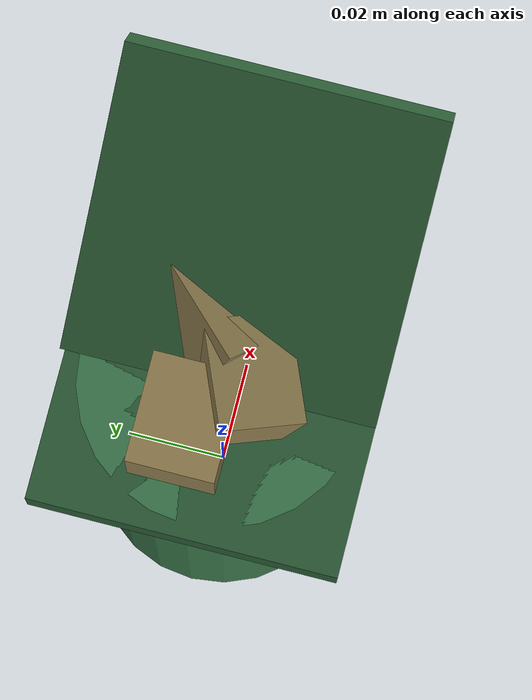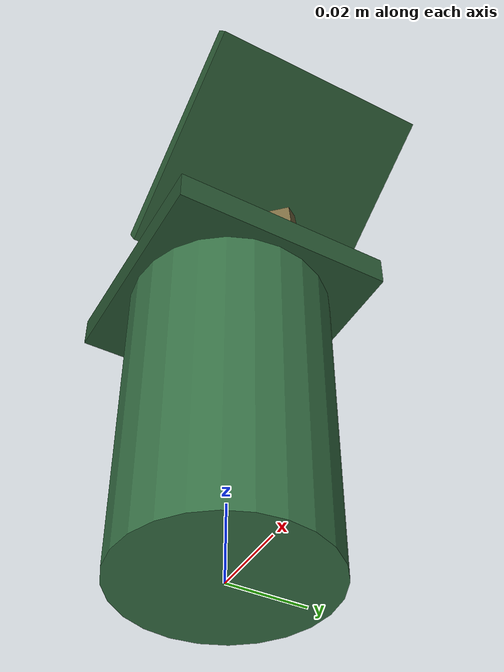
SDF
<?xml version="1.0"?>
<sdf version="1.7">
  <model name="bin_full">
    <static>true</static>
    <link name="link">
<visual name="body"><pose>0 0 0.0440 0 0 0</pose><geometry><cylinder><radius>0.0260</radius><length>0.0880</length></cylinder></geometry><material><ambient>0.22 0.45 0.28 1</ambient><diffuse>0.22 0.45 0.28 1</diffuse></material></visual>
      <collision name="body_c_c"><pose>0 0 0.0440 0 0 0</pose><geometry><cylinder><radius>0.0260</radius><length>0.0880</length></cylinder></geometry></collision>
      <visual name="rim"><pose>0 0 0.0840 0 0 0</pose><geometry><box><size>0.0572 0.0572 0.008</size></box></geometry><material><ambient>0.16 0.34 0.20 1</ambient><diffuse>0.16 0.34 0.20 1</diffuse></material></visual>
      <visual name="lid"><pose>0.0234 0 0.1100 0 -0.55 0</pose><geometry><box><size>0.0572 0.0572 0.006</size></box></geometry><material><ambient>0.20 0.40 0.24 1</ambient><diffuse>0.20 0.40 0.24 1</diffuse></material></visual>
      <visual name="trash0"><pose>-0.010 0.004 0.0980 0.00 0 0.00</pose><geometry><box><size>0.020 0.016 0.014</size></box></geometry><material><ambient>0.55 0.48 0.30 1</ambient><diffuse>0.55 0.48 0.30 1</diffuse></material></visual>
      <visual name="trash1"><pose>0.000 -0.004 0.0980 0.30 0 0.40</pose><geometry><box><size>0.020 0.016 0.014</size></box></geometry><material><ambient>0.55 0.48 0.30 1</ambient><diffuse>0.55 0.48 0.30 1</diffuse></material></visual>
      <visual name="trash2"><pose>0.010 0.004 0.0980 0.60 0 0.80</pose><geometry><box><size>0.020 0.016 0.014</size></box></geometry><material><ambient>0.55 0.48 0.30 1</ambient><diffuse>0.55 0.48 0.30 1</diffuse></material></visual>
    </link>
  </model>
</sdf>
